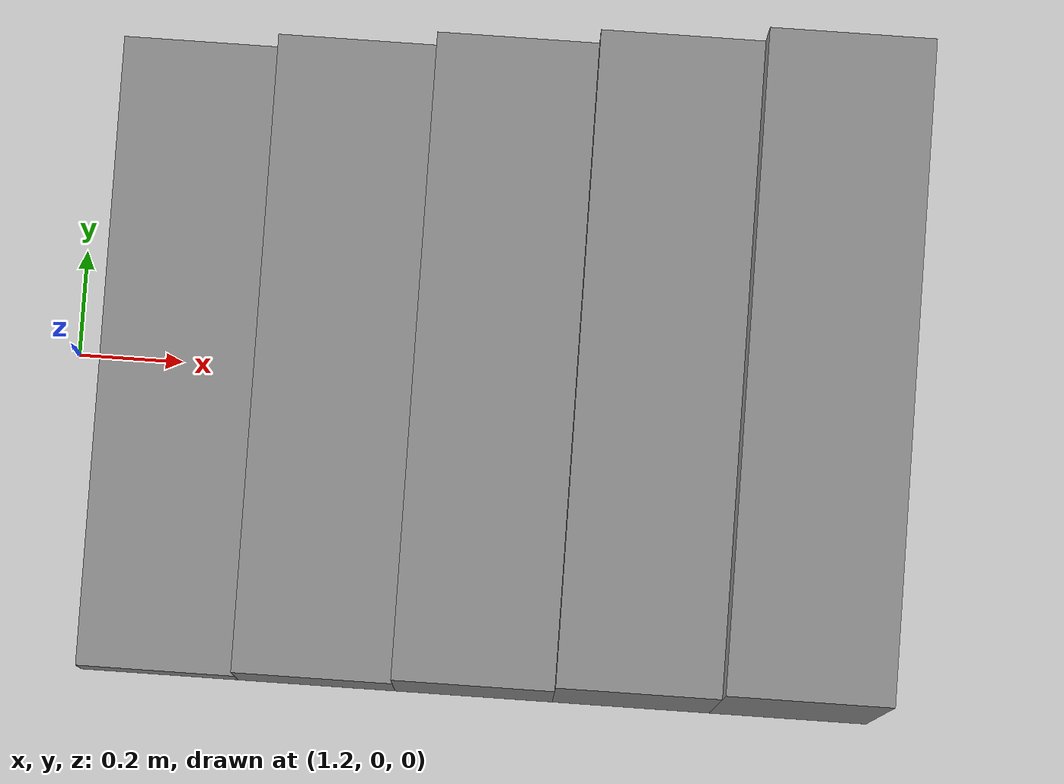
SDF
<?xml version="1.0" ?>

<sdf version="1.5">
    <world name="default">
        <!-- 优化的物理引擎配置 - 降低更新率和迭代次数以减少内存和CPU使用 -->
        <physics type="ode">
            <type>world</type>
            <!-- 降低更新率从 500 到 1000Hz (0.001s step) -->
            <max_step_size>0.002</max_step_size>
            <!-- 降低实时更新率从 500 到 1000 -->
            <real_time_update_rate>500</real_time_update_rate>
            <!-- 降低求解器迭代次数从 500 到 50 -->
            <iters>50</iters>
            <!-- 设置最大接触点数量，防止无限累积 -->
            <max_contacts>20</max_contacts>
        </physics>

        <!-- A global light source -->
        <include>
            <uri>model://sun</uri>
        </include>

        <!-- A ground plane -->
        <include>
            <uri>model://ground_plane</uri>
        </include>

        <!-- 简化版楼梯 - 只保留一组用于测试 -->
        <model name="stairs">
            <static>true</static>
            <pose>1.40 0 0 0 0 0</pose>
            <link name="step_1">
                <pose>0.00 0 0.075 0 0 0</pose>
                <collision name="collision">
                    <geometry>
                        <box>
                            <size>0.30 1.20 0.15</size>
                        </box>
                    </geometry>
                </collision>
                <visual name="visual">
                    <geometry>
                        <box>
                            <size>0.30 1.20 0.15</size>
                        </box>
                    </geometry>
                    <material>
                        <ambient>0.45 0.45 0.45 1</ambient>
                        <diffuse>0.55 0.55 0.55 1</diffuse>
                    </material>
                </visual>
            </link>
            <link name="step_2">
                <pose>0.30 0 0.150 0 0 0</pose>
                <collision name="collision">
                    <geometry>
                        <box>
                            <size>0.30 1.20 0.30</size>
                        </box>
                    </geometry>
                </collision>
                <visual name="visual">
                    <geometry>
                        <box>
                            <size>0.30 1.20 0.30</size>
                        </box>
                    </geometry>
                    <material>
                        <ambient>0.45 0.45 0.45 1</ambient>
                        <diffuse>0.55 0.55 0.55 1</diffuse>
                    </material>
                </visual>
            </link>
            <link name="step_3">
                <pose>0.60 0 0.225 0 0 0</pose>
                <collision name="collision">
                    <geometry>
                        <box>
                            <size>0.30 1.20 0.45</size>
                        </box>
                    </geometry>
                </collision>
                <visual name="visual">
                    <geometry>
                        <box>
                            <size>0.30 1.20 0.45</size>
                        </box>
                    </geometry>
                    <material>
                        <ambient>0.45 0.45 0.45 1</ambient>
                        <diffuse>0.55 0.55 0.55 1</diffuse>
                    </material>
                </visual>
            </link>
            <link name="step_4">
                <pose>0.90 0 0.300 0 0 0</pose>
                <collision name="collision">
                    <geometry>
                        <box>
                            <size>0.30 1.20 0.60</size>
                        </box>
                    </geometry>
                </collision>
                <visual name="visual">
                    <geometry>
                        <box>
                            <size>0.30 1.20 0.60</size>
                        </box>
                    </geometry>
                    <material>
                        <ambient>0.45 0.45 0.45 1</ambient>
                        <diffuse>0.55 0.55 0.55 1</diffuse>
                    </material>
                </visual>
            </link>
            <link name="step_5">
                <pose>1.20 0 0.375 0 0 0</pose>
                <collision name="collision">
                    <geometry>
                        <box>
                            <size>0.30 1.20 0.75</size>
                        </box>
                    </geometry>
                </collision>
                <visual name="visual">
                    <geometry>
                        <box>
                            <size>0.30 1.20 0.75</size>
                        </box>
                    </geometry>
                    <material>
                        <ambient>0.45 0.45 0.45 1</ambient>
                        <diffuse>0.55 0.55 0.55 1</diffuse>
                    </material>
                </visual>
            </link>
        </model>
    </world>
</sdf>
